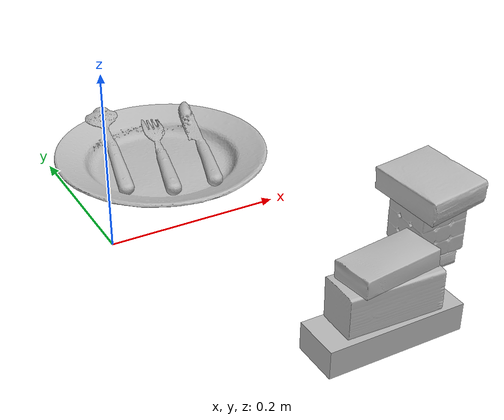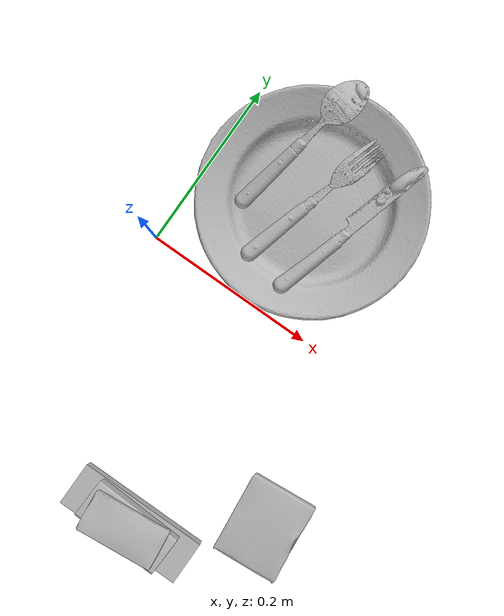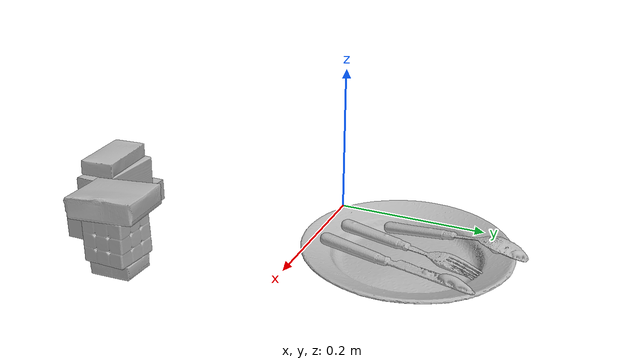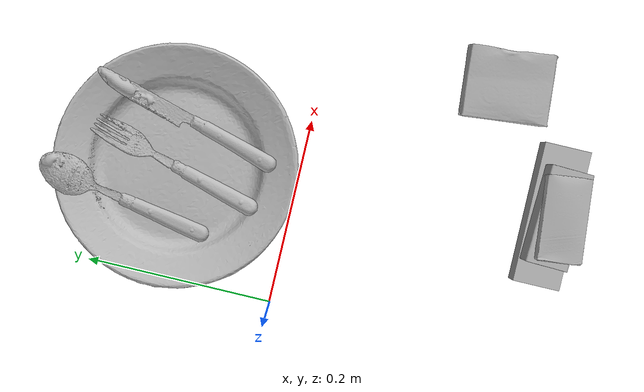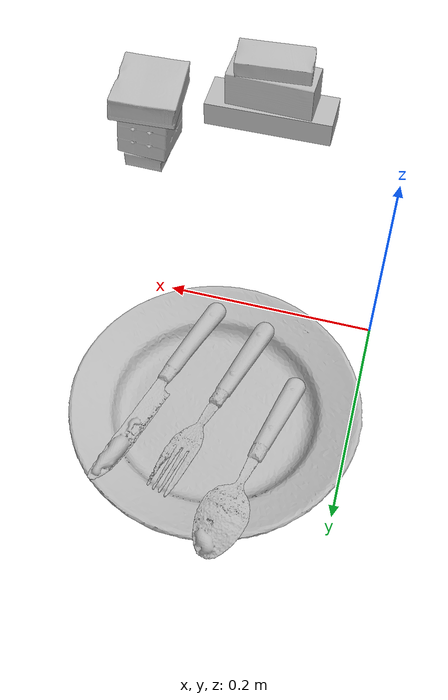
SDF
<?xml version="1.0" ?>
<sdf version="1.4">
  <world name="default">
    <light name="light1" type="point">
      <pose>0 0 1 0 0 0</pose>
      <diffuse>3 3 3 1</diffuse>
      <specular>3 3 3 1</specular>
    </light>
    <light name="light2" type="point">
      <pose>0 0.5 2 0 0 0</pose>
      <diffuse>1 1 1 1</diffuse>
      <specular>1 1 1 1</specular>
    </light>
    <light name="light3" type="point">
      <pose>0 0.5 2 0 0 0</pose>
      <diffuse>3 3 3 1</diffuse>
      <specular>3 3 3 1</specular>
    </light>
    <scene>
      <ambient>0.7 0.7 0.7</ambient>
    </scene>
    <model name="box11">
      <link name="link_box11">
        <collision name="default">
          <geometry>
            <mesh>
              <uri>model://jenga/collision_meshes/collision.obj</uri>
              <scale>1.0 1.0 1.0</scale>
            </mesh>
          </geometry>
          <surface>
            <friction>
              <ode>
                <mu>0.5</mu>
                <mu2>0.5</mu2>
              </ode>
            </friction>
          </surface>
        </collision>
        <visual name="default">
          <geometry>
            <mesh>
              <uri>model://jenga/visual_meshes/visual.dae</uri>
              <scale>1.0 1.0 1.0</scale>
            </mesh>
          </geometry>
        </visual>
        <inertial>
          <mass>0.24099597334861755</mass>
          <pose>-2.502855807051674e-07 -0.00010250010382151231 -4.0923401684267446e-05 0.0 -7.34215461761844e-07 0.0</pose>
          <inertia>
            <ixx>6.668944e-05</ixx>
            <iyy>0.0004518858</iyy>
            <izz>0.00048242652</izz>
            <ixy>0</ixy>
            <ixz>0</ixz>
            <iyz>0</iyz>
          </inertia>
        </inertial>
      </link>
      <pose>0.16000044345855713 -0.26989734172821045 0.014999588951468468 3.7496966382304236e-06 -4.258330276182984e-06 1.0446898130001374e-06</pose>
    </model>
    <model name="box12">
      <link name="link_box12">
        <collision name="default">
          <geometry>
            <mesh>
              <uri>model://wood_block/collision_meshes/collision.obj</uri>
              <scale>0.5 0.5 0.5</scale>
            </mesh>
          </geometry>
          <surface>
            <friction>
              <ode>
                <mu>0.5</mu>
                <mu2>0.5</mu2>
              </ode>
            </friction>
          </surface>
        </collision>
        <visual name="default">
          <geometry>
            <mesh>
              <uri>model://wood_block/visual_meshes/visual.dae</uri>
              <scale>0.5 0.5 0.5</scale>
            </mesh>
          </geometry>
        </visual>
        <inertial>
          <mass>0.14152581989765167</mass>
          <pose>-2.9066577553749084e-06 -0.000285404734313488 0.00013204291462898254 -0.05220812938960465 -0.005192695343712196 -0.006861377662393293</pose>
          <inertia>
            <ixx>4.7345737e-05</ixx>
            <iyy>0.0001495652</iyy>
            <izz>0.00014900575</izz>
            <ixy>0</ixy>
            <ixz>0</ixz>
            <iyz>0</iyz>
          </inertia>
        </inertial>
      </link>
      <pose>0.15991832315921783 -0.26906806230545044 0.05252503231167793 -0.01681984204426927 -0.0007155493566464553 -0.0371796286336614</pose>
    </model>
    <model name="box13">
      <link name="link_box13">
        <collision name="default">
          <geometry>
            <mesh>
              <uri>model://sugar_box/collision_meshes/collision.obj</uri>
              <scale>0.5 0.5 0.5</scale>
            </mesh>
          </geometry>
          <surface>
            <friction>
              <ode>
                <mu>0.5</mu>
                <mu2>0.5</mu2>
              </ode>
            </friction>
          </surface>
        </collision>
        <visual name="default">
          <geometry>
            <mesh>
              <uri>model://sugar_box/visual_meshes/visual.dae</uri>
              <scale>0.5 0.5 0.5</scale>
            </mesh>
          </geometry>
        </visual>
        <inertial>
          <mass>0.08336380124092102</mass>
          <pose>0.0005171863595023751 1.924554817378521e-05 -0.00018182402709499002 -0.0004046263001201691 0.0010506636386254094 0.0026153790217303746</pose>
          <inertia>
            <ixx>1.7364619e-05</ixx>
            <iyy>5.612603e-05</iyy>
            <izz>6.718955e-05</izz>
            <ixy>0</ixy>
            <ixz>0</ixz>
            <iyz>0</iyz>
          </inertia>
        </inertial>
      </link>
      <pose>0.159176304936409 -0.2695663273334503 0.08673355728387833 -0.01708787951141603 -0.027565972778990214 0.09821377088740423</pose>
    </model>
    <model name="box21">
      <link name="link_box21">
        <collision name="default">
          <geometry>
            <mesh>
              <uri>model://pudding_box/collision_meshes/collision.obj</uri>
              <scale>0.5 0.5 0.5</scale>
            </mesh>
          </geometry>
          <surface>
            <friction>
              <ode>
                <mu>0.5</mu>
                <mu2>0.5</mu2>
              </ode>
            </friction>
          </surface>
        </collision>
        <visual name="default">
          <geometry>
            <mesh>
              <uri>model://pudding_box/visual_meshes/visual.dae</uri>
              <scale>0.5 0.5 0.5</scale>
            </mesh>
          </geometry>
        </visual>
        <inertial>
          <mass>0.025778822600841522</mass>
          <pose>0.00024474109522998333 0.00040339428232982755 -0.0002594413817860186 0.005213100851918505 -0.006603799640504885 0.02007982516037135</pose>
          <inertia>
            <ixx>7.285408e-06</ixx>
            <iyy>4.901674e-06</iyy>
            <izz>1.07588085e-05</izz>
            <ixy>0</ixy>
            <ixz>0</ixz>
            <iyz>0</iyz>
          </inertia>
        </inertial>
      </link>
      <pose>0.2797493636608124 -0.18026837706565857 0.009864689782261848 0.023525436033027435 -0.010859190504267428 0.0002722030942459446</pose>
    </model>
    <model name="box22">
      <link name="link_box22">
        <collision name="default">
          <geometry>
            <mesh>
              <uri>model://rubiks_cube/collision_meshes/collision.obj</uri>
              <scale>1.0 1.0 1.0</scale>
            </mesh>
          </geometry>
          <surface>
            <friction>
              <ode>
                <mu>0.5</mu>
                <mu2>0.5</mu2>
              </ode>
            </friction>
          </surface>
        </collision>
        <visual name="default">
          <geometry>
            <mesh>
              <uri>model://rubiks_cube/visual_meshes/visual.dae</uri>
              <scale>1.0 1.0 1.0</scale>
            </mesh>
          </geometry>
        </visual>
        <inertial>
          <mass>0.22147096693515778</mass>
          <pose>2.6721041649580002e-05 5.256967051536776e-05 -7.264316082000732e-06 -0.05467273282600652 -0.09814100107642566 -0.034457018786431724</pose>
          <inertia>
            <ixx>0.00012237758</ixx>
            <iyy>0.00012180688</iyy>
            <izz>0.00012339167</izz>
            <ixy>0</ixy>
            <ixz>0</ixz>
            <iyz>0</iyz>
          </inertia>
        </inertial>
      </link>
      <pose>0.27860721945762634 -0.18160122632980347 0.04780428484082222 0.03360302843037442 -0.039525407440961884 -0.016093127023827033</pose>
    </model>
    <model name="box23">
      <link name="link_box23">
        <collision name="default">
          <geometry>
            <mesh>
              <uri>model://gelatin_box/collision_meshes/collision.obj</uri>
              <scale>1.0 1.0 1.0</scale>
            </mesh>
          </geometry>
          <surface>
            <friction>
              <ode>
                <mu>0.5</mu>
                <mu2>0.5</mu2>
              </ode>
            </friction>
          </surface>
        </collision>
        <visual name="default">
          <geometry>
            <mesh>
              <uri>model://gelatin_box/visual_meshes/visual.dae</uri>
              <scale>1.0 1.0 1.0</scale>
            </mesh>
          </geometry>
        </visual>
        <inertial>
          <mass>0.20053431391716003</mass>
          <pose>0.0004319618456065655 0.00011156871914863586 -0.00036403207923285663 -0.001050372330881514 -0.004755818219920532 0.016440563197859918</pose>
          <inertia>
            <ixx>0.00014156084</ixx>
            <iyy>0.00010111618</iyy>
            <izz>0.00021548718</izz>
            <ixy>0</ixy>
            <ixz>0</ixz>
            <iyz>0</iyz>
          </inertia>
        </inertial>
      </link>
      <pose>0.27665290236473083 -0.18300215899944305 0.09201288223266602 0.04290559817216309 -0.05623759863003328 0.08523181915564838</pose>
    </model>
    <model name="plate1">
      <link name="link_plate1">
        <collision name="default">
          <geometry>
            <mesh>
              <uri>model://plate/collision_meshes/collision.obj</uri>
              <scale>1.0 1.0 1.0</scale>
            </mesh>
          </geometry>
          <surface>
            <friction>
              <ode>
                <mu>0.5</mu>
                <mu2>0.5</mu2>
              </ode>
            </friction>
          </surface>
        </collision>
        <visual name="default">
          <geometry>
            <mesh>
              <uri>model://plate/visual_meshes/visual.dae</uri>
              <scale>1.0 1.0 1.0</scale>
            </mesh>
          </geometry>
        </visual>
        <inertial>
          <mass>0.1705944687128067</mass>
          <pose>-0.0006044638575986028 0.0002782570372801274 -0.0010561983799561858 0.002218806973518856 -0.003225464946202784 0.4526031622217862</pose>
          <inertia>
            <ixx>0.0007980444</ixx>
            <iyy>0.0007904114</iyy>
            <izz>0.0015608557</izz>
            <ixy>0</ixy>
            <ixz>0</ixz>
            <iyz>0</iyz>
          </inertia>
        </inertial>
      </link>
      <pose>0.11999999731779099 0.12999996542930603 0.013733003288507462 2.7648636840358822e-08 1.1525112602334987e-08 2.086635257230601e-07</pose>
    </model>
    <model name="silverware1">
      <link name="link_silverware1">
        <collision name="default">
          <geometry>
            <mesh>
              <uri>model://fork/collision_meshes/collision.obj</uri>
              <scale>1.0 1.0 1.0</scale>
            </mesh>
          </geometry>
          <surface>
            <friction>
              <ode>
                <mu>0.5</mu>
                <mu2>0.5</mu2>
              </ode>
            </friction>
          </surface>
        </collision>
        <visual name="default">
          <geometry>
            <mesh>
              <uri>model://fork/visual_meshes/visual.dae</uri>
              <scale>1.0 1.0 1.0</scale>
            </mesh>
          </geometry>
        </visual>
        <inertial>
          <mass>0.02693658135831356</mass>
          <pose>-0.02957003191113472 0.00046588244731538 0.0003218860365450382 -0.013551533598057301 -0.010977833518912038 0.014453896181446386</pose>
          <inertia>
            <ixx>9.442797e-07</ixx>
            <iyy>7.032368e-05</iyy>
            <izz>7.074603e-05</izz>
            <ixy>0</ixy>
            <ixz>0</ixz>
            <iyz>0</iyz>
          </inertia>
        </inertial>
      </link>
      <pose>0.11951273679733276 0.13003766536712646 0.023137232288718224 -3.0551221902893317 -0.016766450720398573 1.297626865449332</pose>
    </model>
    <model name="silverware2">
      <link name="link_silverware2">
        <collision name="default">
          <geometry>
            <mesh>
              <uri>model://knife/collision_meshes/collision.obj</uri>
              <scale>1.0 1.0 1.0</scale>
            </mesh>
          </geometry>
          <surface>
            <friction>
              <ode>
                <mu>0.5</mu>
                <mu2>0.5</mu2>
              </ode>
            </friction>
          </surface>
        </collision>
        <visual name="default">
          <geometry>
            <mesh>
              <uri>model://knife/visual_meshes/visual.dae</uri>
              <scale>1.0 1.0 1.0</scale>
            </mesh>
          </geometry>
        </visual>
        <inertial>
          <mass>0.029087698087096214</mass>
          <pose>-0.023785242810845375 0.0015275123296305537 5.0620237743714824e-05 0.07305335090844457 0.017248415402536993 -0.007409830271159857</pose>
          <inertia>
            <ixx>8.256269e-07</ixx>
            <iyy>0.00011175022</iyy>
            <izz>0.00011201614</izz>
            <ixy>0</ixy>
            <ixz>0</ixz>
            <iyz>0</iyz>
          </inertia>
        </inertial>
      </link>
      <pose>0.16982720792293549 0.13005849719047546 0.02670889161527157 3.065725976094664 -0.01365426356970217 1.3013009111900224</pose>
    </model>
    <model name="silverware3">
      <link name="link_silverware3">
        <collision name="default">
          <geometry>
            <mesh>
              <uri>model://spoon/collision_meshes/collision.obj</uri>
              <scale>1.0 1.0 1.0</scale>
            </mesh>
          </geometry>
          <surface>
            <friction>
              <ode>
                <mu>0.5</mu>
                <mu2>0.5</mu2>
              </ode>
            </friction>
          </surface>
        </collision>
        <visual name="default">
          <geometry>
            <mesh>
              <uri>model://spoon/visual_meshes/visual.dae</uri>
              <scale>1.0 1.0 1.0</scale>
            </mesh>
          </geometry>
        </visual>
        <inertial>
          <mass>0.04163059964776039</mass>
          <pose>-0.005526324268430471 -0.001603418029844761 -0.0007271656068041921 0.035215733596471024 -0.03906582179646946 0.006150610371924991</pose>
          <inertia>
            <ixx>2.3155617e-06</ixx>
            <iyy>0.00015840305</iyy>
            <izz>0.00015954502</izz>
            <ixy>0</ixy>
            <ixz>0</ixz>
            <iyz>0</iyz>
          </inertia>
        </inertial>
      </link>
      <pose>0.07508584856987 0.17551322281360626 0.022452006116509438 3.0258601644491443 -0.1600220172048395 1.3742587333106342</pose>
    </model>
  </world>
</sdf>
